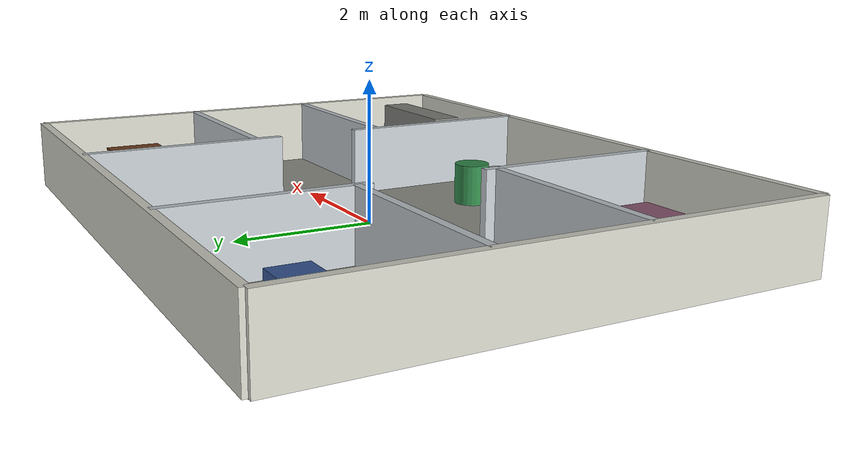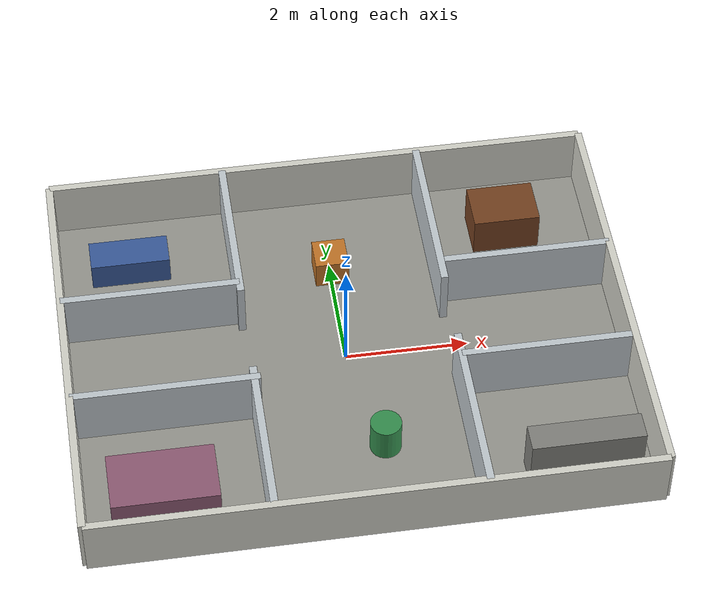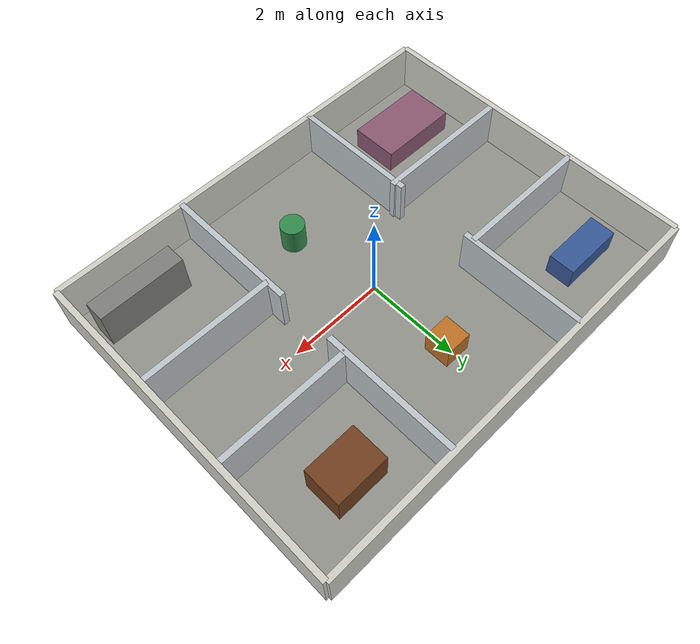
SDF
<sdf version="1.7">
  <world name="simple_home">

    <gravity>0 0 -9.8</gravity>

    <physics name="default_physics" type="ode">
      <max_step_size>0.001</max_step_size>
      <real_time_factor>1</real_time_factor>
      <real_time_update_rate>1000</real_time_update_rate>
    </physics>

    <scene>
      <ambient>0.45 0.45 0.45 1</ambient>
      <background>0.70 0.72 0.76 1</background>
      <shadows>false</shadows>
    </scene>

    <light name="sun" type="directional">
      <cast_shadows>false</cast_shadows>
      <pose>0 0 8 0 0 0</pose>
      <diffuse>0.8 0.8 0.8 1</diffuse>
      <specular>0.1 0.1 0.1 1</specular>
      <direction>-0.5 0.2 -1.0</direction>
    </light>

    <model name="floor">
      <static>true</static>
      <link name="link">
        <collision name="collision">
          <geometry>
            <box>
              <size>9.0 7.0 0.02</size>
            </box>
          </geometry>
        </collision>
        <visual name="visual">
          <geometry>
            <box>
              <size>9.0 7.0 0.02</size>
            </box>
          </geometry>
          <material>
            <ambient>0.58 0.58 0.55 1</ambient>
            <diffuse>0.58 0.58 0.55 1</diffuse>
          </material>
        </visual>
      </link>
    </model>

    <!-- Outer boundary walls: 9 m x 7 m home footprint. -->
    <model name="north_wall">
      <static>true</static>
      <pose>0 3.5 0.5 0 0 0</pose>
      <link name="link">
        <collision name="collision"><geometry><box><size>9.0 0.12 1.0</size></box></geometry></collision>
        <visual name="visual"><geometry><box><size>9.0 0.12 1.0</size></box></geometry><material><ambient>0.82 0.82 0.78 1</ambient><diffuse>0.82 0.82 0.78 1</diffuse></material></visual>
      </link>
    </model>

    <model name="south_wall">
      <static>true</static>
      <pose>0 -3.5 0.5 0 0 0</pose>
      <link name="link">
        <collision name="collision"><geometry><box><size>9.0 0.12 1.0</size></box></geometry></collision>
        <visual name="visual"><geometry><box><size>9.0 0.12 1.0</size></box></geometry><material><ambient>0.82 0.82 0.78 1</ambient><diffuse>0.82 0.82 0.78 1</diffuse></material></visual>
      </link>
    </model>

    <model name="east_wall">
      <static>true</static>
      <pose>4.5 0 0.5 0 0 0</pose>
      <link name="link">
        <collision name="collision"><geometry><box><size>0.12 7.0 1.0</size></box></geometry></collision>
        <visual name="visual"><geometry><box><size>0.12 7.0 1.0</size></box></geometry><material><ambient>0.82 0.82 0.78 1</ambient><diffuse>0.82 0.82 0.78 1</diffuse></material></visual>
      </link>
    </model>

    <model name="west_wall">
      <static>true</static>
      <pose>-4.5 0 0.5 0 0 0</pose>
      <link name="link">
        <collision name="collision"><geometry><box><size>0.12 7.0 1.0</size></box></geometry></collision>
        <visual name="visual"><geometry><box><size>0.12 7.0 1.0</size></box></geometry><material><ambient>0.82 0.82 0.78 1</ambient><diffuse>0.82 0.82 0.78 1</diffuse></material></visual>
      </link>
    </model>

    <!-- Interior walls with door gaps. -->
    <model name="left_room_wall_top">
      <static>true</static>
      <pose>-1.6 2.15 0.5 0 0 0</pose>
      <link name="link">
        <collision name="collision"><geometry><box><size>0.12 2.7 1.0</size></box></geometry></collision>
        <visual name="visual"><geometry><box><size>0.12 2.7 1.0</size></box></geometry><material><ambient>0.75 0.78 0.80 1</ambient><diffuse>0.75 0.78 0.80 1</diffuse></material></visual>
      </link>
    </model>

    <model name="left_room_wall_bottom">
      <static>true</static>
      <pose>-1.6 -2.15 0.5 0 0 0</pose>
      <link name="link">
        <collision name="collision"><geometry><box><size>0.12 2.7 1.0</size></box></geometry></collision>
        <visual name="visual"><geometry><box><size>0.12 2.7 1.0</size></box></geometry><material><ambient>0.75 0.78 0.80 1</ambient><diffuse>0.75 0.78 0.80 1</diffuse></material></visual>
      </link>
    </model>

    <model name="right_room_wall_top">
      <static>true</static>
      <pose>1.7 2.05 0.5 0 0 0</pose>
      <link name="link">
        <collision name="collision"><geometry><box><size>0.12 2.9 1.0</size></box></geometry></collision>
        <visual name="visual"><geometry><box><size>0.12 2.9 1.0</size></box></geometry><material><ambient>0.75 0.78 0.80 1</ambient><diffuse>0.75 0.78 0.80 1</diffuse></material></visual>
      </link>
    </model>

    <model name="right_room_wall_bottom">
      <static>true</static>
      <pose>1.7 -2.05 0.5 0 0 0</pose>
      <link name="link">
        <collision name="collision"><geometry><box><size>0.12 2.9 1.0</size></box></geometry></collision>
        <visual name="visual"><geometry><box><size>0.12 2.9 1.0</size></box></geometry><material><ambient>0.75 0.78 0.80 1</ambient><diffuse>0.75 0.78 0.80 1</diffuse></material></visual>
      </link>
    </model>

    <model name="top_room_divider_left">
      <static>true</static>
      <pose>-3.05 1.0 0.5 0 0 0</pose>
      <link name="link">
        <collision name="collision"><geometry><box><size>2.9 0.12 1.0</size></box></geometry></collision>
        <visual name="visual"><geometry><box><size>2.9 0.12 1.0</size></box></geometry><material><ambient>0.75 0.78 0.80 1</ambient><diffuse>0.75 0.78 0.80 1</diffuse></material></visual>
      </link>
    </model>

    <model name="top_room_divider_right">
      <static>true</static>
      <pose>3.10 1.0 0.5 0 0 0</pose>
      <link name="link">
        <collision name="collision"><geometry><box><size>2.8 0.12 1.0</size></box></geometry></collision>
        <visual name="visual"><geometry><box><size>2.8 0.12 1.0</size></box></geometry><material><ambient>0.75 0.78 0.80 1</ambient><diffuse>0.75 0.78 0.80 1</diffuse></material></visual>
      </link>
    </model>

    <model name="bottom_room_divider_left">
      <static>true</static>
      <pose>-3.0 -1.0 0.5 0 0 0</pose>
      <link name="link">
        <collision name="collision"><geometry><box><size>3.0 0.12 1.0</size></box></geometry></collision>
        <visual name="visual"><geometry><box><size>3.0 0.12 1.0</size></box></geometry><material><ambient>0.75 0.78 0.80 1</ambient><diffuse>0.75 0.78 0.80 1</diffuse></material></visual>
      </link>
    </model>

    <model name="bottom_room_divider_right">
      <static>true</static>
      <pose>3.10 -1.0 0.5 0 0 0</pose>
      <link name="link">
        <collision name="collision"><geometry><box><size>2.8 0.12 1.0</size></box></geometry></collision>
        <visual name="visual"><geometry><box><size>2.8 0.12 1.0</size></box></geometry><material><ambient>0.75 0.78 0.80 1</ambient><diffuse>0.75 0.78 0.80 1</diffuse></material></visual>
      </link>
    </model>

    <!-- Light primitive furniture/obstacles. -->
    <model name="sofa">
      <static>true</static>
      <pose>-3.3 2.35 0.25 0 0 0</pose>
      <link name="link">
        <collision name="collision"><geometry><box><size>1.3 0.55 0.5</size></box></geometry></collision>
        <visual name="visual"><geometry><box><size>1.3 0.55 0.5</size></box></geometry><material><ambient>0.22 0.35 0.60 1</ambient><diffuse>0.22 0.35 0.60 1</diffuse></material></visual>
      </link>
    </model>

    <model name="dining_table">
      <static>true</static>
      <pose>3.0 2.35 0.35 0 0 0</pose>
      <link name="link">
        <collision name="collision"><geometry><box><size>1.1 0.8 0.7</size></box></geometry></collision>
        <visual name="visual"><geometry><box><size>1.1 0.8 0.7</size></box></geometry><material><ambient>0.45 0.25 0.12 1</ambient><diffuse>0.45 0.25 0.12 1</diffuse></material></visual>
      </link>
    </model>

    <model name="bed">
      <static>true</static>
      <pose>-3.2 -2.35 0.25 0 0 0</pose>
      <link name="link">
        <collision name="collision"><geometry><box><size>1.7 1.0 0.5</size></box></geometry></collision>
        <visual name="visual"><geometry><box><size>1.7 1.0 0.5</size></box></geometry><material><ambient>0.55 0.35 0.45 1</ambient><diffuse>0.55 0.35 0.45 1</diffuse></material></visual>
      </link>
    </model>

    <model name="kitchen_counter">
      <static>true</static>
      <pose>3.35 -2.75 0.45 0 0 0</pose>
      <link name="link">
        <collision name="collision"><geometry><box><size>1.8 0.45 0.9</size></box></geometry></collision>
        <visual name="visual"><geometry><box><size>1.8 0.45 0.9</size></box></geometry><material><ambient>0.50 0.50 0.48 1</ambient><diffuse>0.50 0.50 0.48 1</diffuse></material></visual>
      </link>
    </model>

    <model name="center_box">
      <static>true</static>
      <pose>0.0 1.85 0.25 0 0 0</pose>
      <link name="link">
        <collision name="collision"><geometry><box><size>0.55 0.55 0.5</size></box></geometry></collision>
        <visual name="visual"><geometry><box><size>0.55 0.55 0.5</size></box></geometry><material><ambient>0.75 0.45 0.15 1</ambient><diffuse>0.75 0.45 0.15 1</diffuse></material></visual>
      </link>
    </model>

    <model name="small_round_obstacle">
      <static>true</static>
      <pose>0.35 -1.9 0.3 0 0 0</pose>
      <link name="link">
        <collision name="collision">
          <geometry><cylinder><radius>0.25</radius><length>0.6</length></cylinder></geometry>
        </collision>
        <visual name="visual">
          <geometry><cylinder><radius>0.25</radius><length>0.6</length></cylinder></geometry>
          <material><ambient>0.20 0.55 0.30 1</ambient><diffuse>0.20 0.55 0.30 1</diffuse></material>
        </visual>
      </link>
    </model>
  </world>
</sdf>
